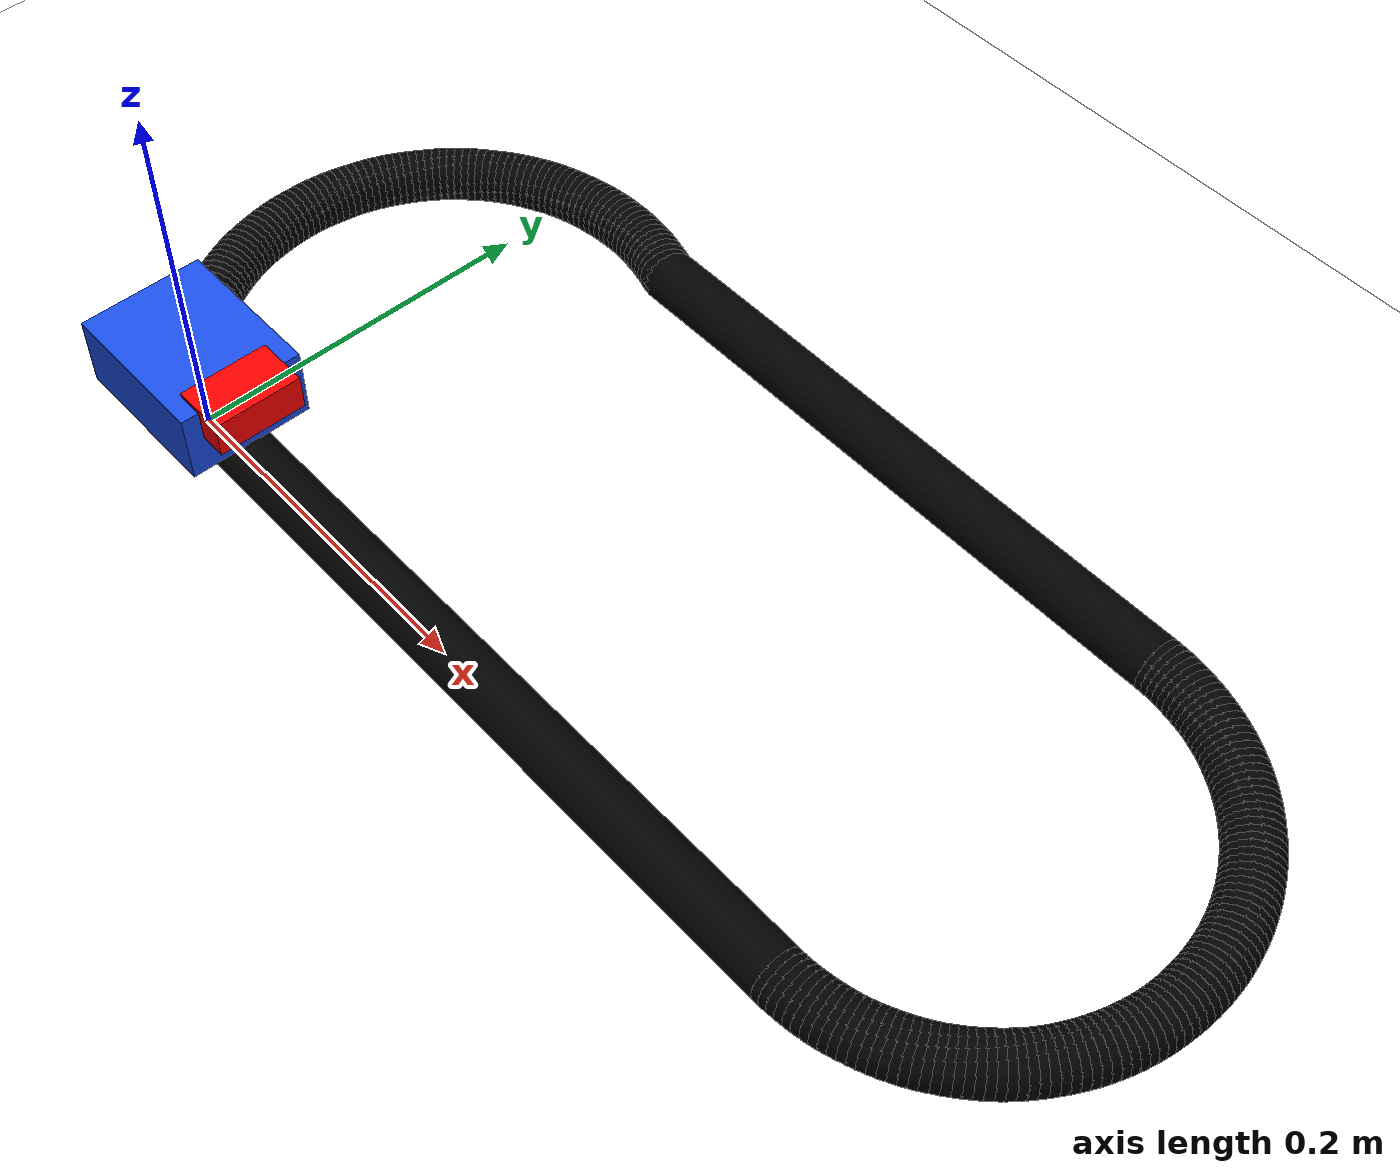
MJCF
<mujoco model="measured_stadium_racetrack">
  <compiler angle="degree"/>
  <option timestep="0.01" gravity="0 0 -9.81"/>
  <visual>
    <global azimuth="90" elevation="-90"/>
    <rgba haze="1 1 1 1"/>
    <headlight ambient="0.8 0.8 0.8" diffuse="0.4 0.4 0.4" specular="0 0 0"/>
  </visual>
  <asset>
    <material name="floor_mat" rgba="1 1 1 1"/>
    <material name="track_mat" rgba="0 0 0 1"/>
    <material name="robot_mat" rgba="0.1 0.3 0.9 1"/>
    <material name="front_mat" rgba="1 0 0 1"/>
  </asset>
  <worldbody>
    <geom name="floor" type="plane" pos="0.232248 0.127161 0" size="1.446080 1.054323 0.02" material="floor_mat"/>
    <geom name="ground_truth_0000" type="capsule" fromto="0.000000 0.000000 0.006 0.431800 0.000000 0.006" size="0.015000" material="track_mat" contype="0" conaffinity="0"/>
    <geom name="ground_truth_0001" type="capsule" fromto="0.431800 0.000000 0.006 0.435840 0.000066 0.006" size="0.015000" material="track_mat" contype="0" conaffinity="0"/>
    <geom name="ground_truth_0002" type="capsule" fromto="0.435840 0.000066 0.006 0.439877 0.000264 0.006" size="0.015000" material="track_mat" contype="0" conaffinity="0"/>
    <geom name="ground_truth_0003" type="capsule" fromto="0.439877 0.000264 0.006 0.443904 0.000595 0.006" size="0.015000" material="track_mat" contype="0" conaffinity="0"/>
    <geom name="ground_truth_0004" type="capsule" fromto="0.443904 0.000595 0.006 0.447918 0.001056 0.006" size="0.015000" material="track_mat" contype="0" conaffinity="0"/>
    <geom name="ground_truth_0005" type="capsule" fromto="0.447918 0.001056 0.006 0.451916 0.001649 0.006" size="0.015000" material="track_mat" contype="0" conaffinity="0"/>
    <geom name="ground_truth_0006" type="capsule" fromto="0.451916 0.001649 0.006 0.455891 0.002373 0.006" size="0.015000" material="track_mat" contype="0" conaffinity="0"/>
    <geom name="ground_truth_0007" type="capsule" fromto="0.455891 0.002373 0.006 0.459841 0.003226 0.006" size="0.015000" material="track_mat" contype="0" conaffinity="0"/>
    <geom name="ground_truth_0008" type="capsule" fromto="0.459841 0.003226 0.006 0.463761 0.004208 0.006" size="0.015000" material="track_mat" contype="0" conaffinity="0"/>
    <geom name="ground_truth_0009" type="capsule" fromto="0.463761 0.004208 0.006 0.467647 0.005317 0.006" size="0.015000" material="track_mat" contype="0" conaffinity="0"/>
    <geom name="ground_truth_0010" type="capsule" fromto="0.467647 0.005317 0.006 0.471494 0.006554 0.006" size="0.015000" material="track_mat" contype="0" conaffinity="0"/>
    <geom name="ground_truth_0011" type="capsule" fromto="0.471494 0.006554 0.006 0.475299 0.007915 0.006" size="0.015000" material="track_mat" contype="0" conaffinity="0"/>
    <geom name="ground_truth_0012" type="capsule" fromto="0.475299 0.007915 0.006 0.479057 0.009400 0.006" size="0.015000" material="track_mat" contype="0" conaffinity="0"/>
    <geom name="ground_truth_0013" type="capsule" fromto="0.479057 0.009400 0.006 0.482764 0.011007 0.006" size="0.015000" material="track_mat" contype="0" conaffinity="0"/>
    <geom name="ground_truth_0014" type="capsule" fromto="0.482764 0.011007 0.006 0.486417 0.012735 0.006" size="0.015000" material="track_mat" contype="0" conaffinity="0"/>
    <geom name="ground_truth_0015" type="capsule" fromto="0.486417 0.012735 0.006 0.490012 0.014581 0.006" size="0.015000" material="track_mat" contype="0" conaffinity="0"/>
    <geom name="ground_truth_0016" type="capsule" fromto="0.490012 0.014581 0.006 0.493544 0.016544 0.006" size="0.015000" material="track_mat" contype="0" conaffinity="0"/>
    <geom name="ground_truth_0017" type="capsule" fromto="0.493544 0.016544 0.006 0.497010 0.018622 0.006" size="0.015000" material="track_mat" contype="0" conaffinity="0"/>
    <geom name="ground_truth_0018" type="capsule" fromto="0.497010 0.018622 0.006 0.500406 0.020812 0.006" size="0.015000" material="track_mat" contype="0" conaffinity="0"/>
    <geom name="ground_truth_0019" type="capsule" fromto="0.500406 0.020812 0.006 0.503729 0.023111 0.006" size="0.015000" material="track_mat" contype="0" conaffinity="0"/>
    <geom name="ground_truth_0020" type="capsule" fromto="0.503729 0.023111 0.006 0.506975 0.025518 0.006" size="0.015000" material="track_mat" contype="0" conaffinity="0"/>
    <geom name="ground_truth_0021" type="capsule" fromto="0.506975 0.025518 0.006 0.510140 0.028031 0.006" size="0.015000" material="track_mat" contype="0" conaffinity="0"/>
    <geom name="ground_truth_0022" type="capsule" fromto="0.510140 0.028031 0.006 0.513222 0.030645 0.006" size="0.015000" material="track_mat" contype="0" conaffinity="0"/>
    <geom name="ground_truth_0023" type="capsule" fromto="0.513222 0.030645 0.006 0.516216 0.033359 0.006" size="0.015000" material="track_mat" contype="0" conaffinity="0"/>
    <geom name="ground_truth_0024" type="capsule" fromto="0.516216 0.033359 0.006 0.519119 0.036169 0.006" size="0.015000" material="track_mat" contype="0" conaffinity="0"/>
    <geom name="ground_truth_0025" type="capsule" fromto="0.519119 0.036169 0.006 0.521930 0.039073 0.006" size="0.015000" material="track_mat" contype="0" conaffinity="0"/>
    <geom name="ground_truth_0026" type="capsule" fromto="0.521930 0.039073 0.006 0.524643 0.042067 0.006" size="0.015000" material="track_mat" contype="0" conaffinity="0"/>
    <geom name="ground_truth_0027" type="capsule" fromto="0.524643 0.042067 0.006 0.527258 0.045148 0.006" size="0.015000" material="track_mat" contype="0" conaffinity="0"/>
    <geom name="ground_truth_0028" type="capsule" fromto="0.527258 0.045148 0.006 0.529770 0.048313 0.006" size="0.015000" material="track_mat" contype="0" conaffinity="0"/>
    <geom name="ground_truth_0029" type="capsule" fromto="0.529770 0.048313 0.006 0.532177 0.051559 0.006" size="0.015000" material="track_mat" contype="0" conaffinity="0"/>
    <geom name="ground_truth_0030" type="capsule" fromto="0.532177 0.051559 0.006 0.534477 0.054882 0.006" size="0.015000" material="track_mat" contype="0" conaffinity="0"/>
    <geom name="ground_truth_0031" type="capsule" fromto="0.534477 0.054882 0.006 0.536667 0.058278 0.006" size="0.015000" material="track_mat" contype="0" conaffinity="0"/>
    <geom name="ground_truth_0032" type="capsule" fromto="0.536667 0.058278 0.006 0.538744 0.061744 0.006" size="0.015000" material="track_mat" contype="0" conaffinity="0"/>
    <geom name="ground_truth_0033" type="capsule" fromto="0.538744 0.061744 0.006 0.540707 0.065276 0.006" size="0.015000" material="track_mat" contype="0" conaffinity="0"/>
    <geom name="ground_truth_0034" type="capsule" fromto="0.540707 0.065276 0.006 0.542553 0.068871 0.006" size="0.015000" material="track_mat" contype="0" conaffinity="0"/>
    <geom name="ground_truth_0035" type="capsule" fromto="0.542553 0.068871 0.006 0.544281 0.072524 0.006" size="0.015000" material="track_mat" contype="0" conaffinity="0"/>
    <geom name="ground_truth_0036" type="capsule" fromto="0.544281 0.072524 0.006 0.545888 0.076231 0.006" size="0.015000" material="track_mat" contype="0" conaffinity="0"/>
    <geom name="ground_truth_0037" type="capsule" fromto="0.545888 0.076231 0.006 0.547373 0.079990 0.006" size="0.015000" material="track_mat" contype="0" conaffinity="0"/>
    <geom name="ground_truth_0038" type="capsule" fromto="0.547373 0.079990 0.006 0.548735 0.083794 0.006" size="0.015000" material="track_mat" contype="0" conaffinity="0"/>
    <geom name="ground_truth_0039" type="capsule" fromto="0.548735 0.083794 0.006 0.549971 0.087642 0.006" size="0.015000" material="track_mat" contype="0" conaffinity="0"/>
    <geom name="ground_truth_0040" type="capsule" fromto="0.549971 0.087642 0.006 0.551081 0.091527 0.006" size="0.015000" material="track_mat" contype="0" conaffinity="0"/>
    <geom name="ground_truth_0041" type="capsule" fromto="0.551081 0.091527 0.006 0.552062 0.095447 0.006" size="0.015000" material="track_mat" contype="0" conaffinity="0"/>
    <geom name="ground_truth_0042" type="capsule" fromto="0.552062 0.095447 0.006 0.552916 0.099397 0.006" size="0.015000" material="track_mat" contype="0" conaffinity="0"/>
    <geom name="ground_truth_0043" type="capsule" fromto="0.552916 0.099397 0.006 0.553639 0.103373 0.006" size="0.015000" material="track_mat" contype="0" conaffinity="0"/>
    <geom name="ground_truth_0044" type="capsule" fromto="0.553639 0.103373 0.006 0.554232 0.107370 0.006" size="0.015000" material="track_mat" contype="0" conaffinity="0"/>
    <geom name="ground_truth_0045" type="capsule" fromto="0.554232 0.107370 0.006 0.554694 0.111384 0.006" size="0.015000" material="track_mat" contype="0" conaffinity="0"/>
    <geom name="ground_truth_0046" type="capsule" fromto="0.554694 0.111384 0.006 0.555024 0.115412 0.006" size="0.015000" material="track_mat" contype="0" conaffinity="0"/>
    <geom name="ground_truth_0047" type="capsule" fromto="0.555024 0.115412 0.006 0.555222 0.119448 0.006" size="0.015000" material="track_mat" contype="0" conaffinity="0"/>
    <geom name="ground_truth_0048" type="capsule" fromto="0.555222 0.119448 0.006 0.555288 0.123488 0.006" size="0.015000" material="track_mat" contype="0" conaffinity="0"/>
    <geom name="ground_truth_0049" type="capsule" fromto="0.555288 0.123488 0.006 0.555222 0.127529 0.006" size="0.015000" material="track_mat" contype="0" conaffinity="0"/>
    <geom name="ground_truth_0050" type="capsule" fromto="0.555222 0.127529 0.006 0.555024 0.131565 0.006" size="0.015000" material="track_mat" contype="0" conaffinity="0"/>
    <geom name="ground_truth_0051" type="capsule" fromto="0.555024 0.131565 0.006 0.554694 0.135592 0.006" size="0.015000" material="track_mat" contype="0" conaffinity="0"/>
    <geom name="ground_truth_0052" type="capsule" fromto="0.554694 0.135592 0.006 0.554232 0.139607 0.006" size="0.015000" material="track_mat" contype="0" conaffinity="0"/>
    <geom name="ground_truth_0053" type="capsule" fromto="0.554232 0.139607 0.006 0.553639 0.143604 0.006" size="0.015000" material="track_mat" contype="0" conaffinity="0"/>
    <geom name="ground_truth_0054" type="capsule" fromto="0.553639 0.143604 0.006 0.552916 0.147580 0.006" size="0.015000" material="track_mat" contype="0" conaffinity="0"/>
    <geom name="ground_truth_0055" type="capsule" fromto="0.552916 0.147580 0.006 0.552062 0.151530 0.006" size="0.015000" material="track_mat" contype="0" conaffinity="0"/>
    <geom name="ground_truth_0056" type="capsule" fromto="0.552062 0.151530 0.006 0.551081 0.155449 0.006" size="0.015000" material="track_mat" contype="0" conaffinity="0"/>
    <geom name="ground_truth_0057" type="capsule" fromto="0.551081 0.155449 0.006 0.549971 0.159335 0.006" size="0.015000" material="track_mat" contype="0" conaffinity="0"/>
    <geom name="ground_truth_0058" type="capsule" fromto="0.549971 0.159335 0.006 0.548735 0.163182 0.006" size="0.015000" material="track_mat" contype="0" conaffinity="0"/>
    <geom name="ground_truth_0059" type="capsule" fromto="0.548735 0.163182 0.006 0.547373 0.166987 0.006" size="0.015000" material="track_mat" contype="0" conaffinity="0"/>
    <geom name="ground_truth_0060" type="capsule" fromto="0.547373 0.166987 0.006 0.545888 0.170745 0.006" size="0.015000" material="track_mat" contype="0" conaffinity="0"/>
    <geom name="ground_truth_0061" type="capsule" fromto="0.545888 0.170745 0.006 0.544281 0.174453 0.006" size="0.015000" material="track_mat" contype="0" conaffinity="0"/>
    <geom name="ground_truth_0062" type="capsule" fromto="0.544281 0.174453 0.006 0.542553 0.178106 0.006" size="0.015000" material="track_mat" contype="0" conaffinity="0"/>
    <geom name="ground_truth_0063" type="capsule" fromto="0.542553 0.178106 0.006 0.540707 0.181700 0.006" size="0.015000" material="track_mat" contype="0" conaffinity="0"/>
    <geom name="ground_truth_0064" type="capsule" fromto="0.540707 0.181700 0.006 0.538744 0.185232 0.006" size="0.015000" material="track_mat" contype="0" conaffinity="0"/>
    <geom name="ground_truth_0065" type="capsule" fromto="0.538744 0.185232 0.006 0.536667 0.188699 0.006" size="0.015000" material="track_mat" contype="0" conaffinity="0"/>
    <geom name="ground_truth_0066" type="capsule" fromto="0.536667 0.188699 0.006 0.534477 0.192095 0.006" size="0.015000" material="track_mat" contype="0" conaffinity="0"/>
    <geom name="ground_truth_0067" type="capsule" fromto="0.534477 0.192095 0.006 0.532177 0.195418 0.006" size="0.015000" material="track_mat" contype="0" conaffinity="0"/>
    <geom name="ground_truth_0068" type="capsule" fromto="0.532177 0.195418 0.006 0.529770 0.198663 0.006" size="0.015000" material="track_mat" contype="0" conaffinity="0"/>
    <geom name="ground_truth_0069" type="capsule" fromto="0.529770 0.198663 0.006 0.527258 0.201828 0.006" size="0.015000" material="track_mat" contype="0" conaffinity="0"/>
    <geom name="ground_truth_0070" type="capsule" fromto="0.527258 0.201828 0.006 0.524643 0.204910 0.006" size="0.015000" material="track_mat" contype="0" conaffinity="0"/>
    <geom name="ground_truth_0071" type="capsule" fromto="0.524643 0.204910 0.006 0.521930 0.207904 0.006" size="0.015000" material="track_mat" contype="0" conaffinity="0"/>
    <geom name="ground_truth_0072" type="capsule" fromto="0.521930 0.207904 0.006 0.519119 0.210808 0.006" size="0.015000" material="track_mat" contype="0" conaffinity="0"/>
    <geom name="ground_truth_0073" type="capsule" fromto="0.519119 0.210808 0.006 0.516216 0.213618 0.006" size="0.015000" material="track_mat" contype="0" conaffinity="0"/>
    <geom name="ground_truth_0074" type="capsule" fromto="0.516216 0.213618 0.006 0.513222 0.216332 0.006" size="0.015000" material="track_mat" contype="0" conaffinity="0"/>
    <geom name="ground_truth_0075" type="capsule" fromto="0.513222 0.216332 0.006 0.510140 0.218946 0.006" size="0.015000" material="track_mat" contype="0" conaffinity="0"/>
    <geom name="ground_truth_0076" type="capsule" fromto="0.510140 0.218946 0.006 0.506975 0.221458 0.006" size="0.015000" material="track_mat" contype="0" conaffinity="0"/>
    <geom name="ground_truth_0077" type="capsule" fromto="0.506975 0.221458 0.006 0.503729 0.223865 0.006" size="0.015000" material="track_mat" contype="0" conaffinity="0"/>
    <geom name="ground_truth_0078" type="capsule" fromto="0.503729 0.223865 0.006 0.500406 0.226165 0.006" size="0.015000" material="track_mat" contype="0" conaffinity="0"/>
    <geom name="ground_truth_0079" type="capsule" fromto="0.500406 0.226165 0.006 0.497010 0.228355 0.006" size="0.015000" material="track_mat" contype="0" conaffinity="0"/>
    <geom name="ground_truth_0080" type="capsule" fromto="0.497010 0.228355 0.006 0.493544 0.230432 0.006" size="0.015000" material="track_mat" contype="0" conaffinity="0"/>
    <geom name="ground_truth_0081" type="capsule" fromto="0.493544 0.230432 0.006 0.490012 0.232395 0.006" size="0.015000" material="track_mat" contype="0" conaffinity="0"/>
    <geom name="ground_truth_0082" type="capsule" fromto="0.490012 0.232395 0.006 0.486417 0.234242 0.006" size="0.015000" material="track_mat" contype="0" conaffinity="0"/>
    <geom name="ground_truth_0083" type="capsule" fromto="0.486417 0.234242 0.006 0.482764 0.235969 0.006" size="0.015000" material="track_mat" contype="0" conaffinity="0"/>
    <geom name="ground_truth_0084" type="capsule" fromto="0.482764 0.235969 0.006 0.479057 0.237577 0.006" size="0.015000" material="track_mat" contype="0" conaffinity="0"/>
    <geom name="ground_truth_0085" type="capsule" fromto="0.479057 0.237577 0.006 0.475299 0.239062 0.006" size="0.015000" material="track_mat" contype="0" conaffinity="0"/>
    <geom name="ground_truth_0086" type="capsule" fromto="0.475299 0.239062 0.006 0.471494 0.240423 0.006" size="0.015000" material="track_mat" contype="0" conaffinity="0"/>
    <geom name="ground_truth_0087" type="capsule" fromto="0.471494 0.240423 0.006 0.467647 0.241659 0.006" size="0.015000" material="track_mat" contype="0" conaffinity="0"/>
    <geom name="ground_truth_0088" type="capsule" fromto="0.467647 0.241659 0.006 0.463761 0.242769 0.006" size="0.015000" material="track_mat" contype="0" conaffinity="0"/>
    <geom name="ground_truth_0089" type="capsule" fromto="0.463761 0.242769 0.006 0.459841 0.243751 0.006" size="0.015000" material="track_mat" contype="0" conaffinity="0"/>
    <geom name="ground_truth_0090" type="capsule" fromto="0.459841 0.243751 0.006 0.455891 0.244604 0.006" size="0.015000" material="track_mat" contype="0" conaffinity="0"/>
    <geom name="ground_truth_0091" type="capsule" fromto="0.455891 0.244604 0.006 0.451916 0.245327 0.006" size="0.015000" material="track_mat" contype="0" conaffinity="0"/>
    <geom name="ground_truth_0092" type="capsule" fromto="0.451916 0.245327 0.006 0.447918 0.245920 0.006" size="0.015000" material="track_mat" contype="0" conaffinity="0"/>
    <geom name="ground_truth_0093" type="capsule" fromto="0.447918 0.245920 0.006 0.443904 0.246382 0.006" size="0.015000" material="track_mat" contype="0" conaffinity="0"/>
    <geom name="ground_truth_0094" type="capsule" fromto="0.443904 0.246382 0.006 0.439877 0.246712 0.006" size="0.015000" material="track_mat" contype="0" conaffinity="0"/>
    <geom name="ground_truth_0095" type="capsule" fromto="0.439877 0.246712 0.006 0.435840 0.246911 0.006" size="0.015000" material="track_mat" contype="0" conaffinity="0"/>
    <geom name="ground_truth_0096" type="capsule" fromto="0.435840 0.246911 0.006 0.431800 0.246977 0.006" size="0.015000" material="track_mat" contype="0" conaffinity="0"/>
    <geom name="ground_truth_0097" type="capsule" fromto="0.431800 0.246977 0.006 0.082550 0.246977 0.006" size="0.015000" material="track_mat" contype="0" conaffinity="0"/>
    <geom name="ground_truth_0098" type="capsule" fromto="0.082550 0.246977 0.006 0.078468 0.248334 0.006" size="0.015000" material="track_mat" contype="0" conaffinity="0"/>
    <geom name="ground_truth_0099" type="capsule" fromto="0.078468 0.248334 0.006 0.074343 0.249556 0.006" size="0.015000" material="track_mat" contype="0" conaffinity="0"/>
    <geom name="ground_truth_0100" type="capsule" fromto="0.074343 0.249556 0.006 0.070180 0.250641 0.006" size="0.015000" material="track_mat" contype="0" conaffinity="0"/>
    <geom name="ground_truth_0101" type="capsule" fromto="0.070180 0.250641 0.006 0.065984 0.251588 0.006" size="0.015000" material="track_mat" contype="0" conaffinity="0"/>
    <geom name="ground_truth_0102" type="capsule" fromto="0.065984 0.251588 0.006 0.061759 0.252396 0.006" size="0.015000" material="track_mat" contype="0" conaffinity="0"/>
    <geom name="ground_truth_0103" type="capsule" fromto="0.061759 0.252396 0.006 0.057509 0.253064 0.006" size="0.015000" material="track_mat" contype="0" conaffinity="0"/>
    <geom name="ground_truth_0104" type="capsule" fromto="0.057509 0.253064 0.006 0.053239 0.253591 0.006" size="0.015000" material="track_mat" contype="0" conaffinity="0"/>
    <geom name="ground_truth_0105" type="capsule" fromto="0.053239 0.253591 0.006 0.048955 0.253977 0.006" size="0.015000" material="track_mat" contype="0" conaffinity="0"/>
    <geom name="ground_truth_0106" type="capsule" fromto="0.048955 0.253977 0.006 0.044660 0.254221 0.006" size="0.015000" material="track_mat" contype="0" conaffinity="0"/>
    <geom name="ground_truth_0107" type="capsule" fromto="0.044660 0.254221 0.006 0.040359 0.254323 0.006" size="0.015000" material="track_mat" contype="0" conaffinity="0"/>
    <geom name="ground_truth_0108" type="capsule" fromto="0.040359 0.254323 0.006 0.036058 0.254282 0.006" size="0.015000" material="track_mat" contype="0" conaffinity="0"/>
    <geom name="ground_truth_0109" type="capsule" fromto="0.036058 0.254282 0.006 0.031760 0.254100 0.006" size="0.015000" material="track_mat" contype="0" conaffinity="0"/>
    <geom name="ground_truth_0110" type="capsule" fromto="0.031760 0.254100 0.006 0.027470 0.253776 0.006" size="0.015000" material="track_mat" contype="0" conaffinity="0"/>
    <geom name="ground_truth_0111" type="capsule" fromto="0.027470 0.253776 0.006 0.023193 0.253311 0.006" size="0.015000" material="track_mat" contype="0" conaffinity="0"/>
    <geom name="ground_truth_0112" type="capsule" fromto="0.023193 0.253311 0.006 0.018934 0.252704 0.006" size="0.015000" material="track_mat" contype="0" conaffinity="0"/>
    <geom name="ground_truth_0113" type="capsule" fromto="0.018934 0.252704 0.006 0.014698 0.251957 0.006" size="0.015000" material="track_mat" contype="0" conaffinity="0"/>
    <geom name="ground_truth_0114" type="capsule" fromto="0.014698 0.251957 0.006 0.010488 0.251071 0.006" size="0.015000" material="track_mat" contype="0" conaffinity="0"/>
    <geom name="ground_truth_0115" type="capsule" fromto="0.010488 0.251071 0.006 0.006310 0.250046 0.006" size="0.015000" material="track_mat" contype="0" conaffinity="0"/>
    <geom name="ground_truth_0116" type="capsule" fromto="0.006310 0.250046 0.006 0.002168 0.248883 0.006" size="0.015000" material="track_mat" contype="0" conaffinity="0"/>
    <geom name="ground_truth_0117" type="capsule" fromto="0.002168 0.248883 0.006 -0.001933 0.247585 0.006" size="0.015000" material="track_mat" contype="0" conaffinity="0"/>
    <geom name="ground_truth_0118" type="capsule" fromto="-0.001933 0.247585 0.006 -0.005989 0.246151 0.006" size="0.015000" material="track_mat" contype="0" conaffinity="0"/>
    <geom name="ground_truth_0119" type="capsule" fromto="-0.005989 0.246151 0.006 -0.009995 0.244585 0.006" size="0.015000" material="track_mat" contype="0" conaffinity="0"/>
    <geom name="ground_truth_0120" type="capsule" fromto="-0.009995 0.244585 0.006 -0.013948 0.242887 0.006" size="0.015000" material="track_mat" contype="0" conaffinity="0"/>
    <geom name="ground_truth_0121" type="capsule" fromto="-0.013948 0.242887 0.006 -0.017842 0.241059 0.006" size="0.015000" material="track_mat" contype="0" conaffinity="0"/>
    <geom name="ground_truth_0122" type="capsule" fromto="-0.017842 0.241059 0.006 -0.021674 0.239103 0.006" size="0.015000" material="track_mat" contype="0" conaffinity="0"/>
    <geom name="ground_truth_0123" type="capsule" fromto="-0.021674 0.239103 0.006 -0.025439 0.237023 0.006" size="0.015000" material="track_mat" contype="0" conaffinity="0"/>
    <geom name="ground_truth_0124" type="capsule" fromto="-0.025439 0.237023 0.006 -0.029134 0.234819 0.006" size="0.015000" material="track_mat" contype="0" conaffinity="0"/>
    <geom name="ground_truth_0125" type="capsule" fromto="-0.029134 0.234819 0.006 -0.032753 0.232494 0.006" size="0.015000" material="track_mat" contype="0" conaffinity="0"/>
    <geom name="ground_truth_0126" type="capsule" fromto="-0.032753 0.232494 0.006 -0.036294 0.230050 0.006" size="0.015000" material="track_mat" contype="0" conaffinity="0"/>
    <geom name="ground_truth_0127" type="capsule" fromto="-0.036294 0.230050 0.006 -0.039752 0.227492 0.006" size="0.015000" material="track_mat" contype="0" conaffinity="0"/>
    <geom name="ground_truth_0128" type="capsule" fromto="-0.039752 0.227492 0.006 -0.043124 0.224820 0.006" size="0.015000" material="track_mat" contype="0" conaffinity="0"/>
    <geom name="ground_truth_0129" type="capsule" fromto="-0.043124 0.224820 0.006 -0.046405 0.222038 0.006" size="0.015000" material="track_mat" contype="0" conaffinity="0"/>
    <geom name="ground_truth_0130" type="capsule" fromto="-0.046405 0.222038 0.006 -0.049593 0.219150 0.006" size="0.015000" material="track_mat" contype="0" conaffinity="0"/>
    <geom name="ground_truth_0131" type="capsule" fromto="-0.049593 0.219150 0.006 -0.052684 0.216158 0.006" size="0.015000" material="track_mat" contype="0" conaffinity="0"/>
    <geom name="ground_truth_0132" type="capsule" fromto="-0.052684 0.216158 0.006 -0.055674 0.213065 0.006" size="0.015000" material="track_mat" contype="0" conaffinity="0"/>
    <geom name="ground_truth_0133" type="capsule" fromto="-0.055674 0.213065 0.006 -0.058561 0.209875 0.006" size="0.015000" material="track_mat" contype="0" conaffinity="0"/>
    <geom name="ground_truth_0134" type="capsule" fromto="-0.058561 0.209875 0.006 -0.061340 0.206592 0.006" size="0.015000" material="track_mat" contype="0" conaffinity="0"/>
    <geom name="ground_truth_0135" type="capsule" fromto="-0.061340 0.206592 0.006 -0.064010 0.203219 0.006" size="0.015000" material="track_mat" contype="0" conaffinity="0"/>
    <geom name="ground_truth_0136" type="capsule" fromto="-0.064010 0.203219 0.006 -0.066567 0.199759 0.006" size="0.015000" material="track_mat" contype="0" conaffinity="0"/>
    <geom name="ground_truth_0137" type="capsule" fromto="-0.066567 0.199759 0.006 -0.069008 0.196217 0.006" size="0.015000" material="track_mat" contype="0" conaffinity="0"/>
    <geom name="ground_truth_0138" type="capsule" fromto="-0.069008 0.196217 0.006 -0.071331 0.192596 0.006" size="0.015000" material="track_mat" contype="0" conaffinity="0"/>
    <geom name="ground_truth_0139" type="capsule" fromto="-0.071331 0.192596 0.006 -0.073532 0.188900 0.006" size="0.015000" material="track_mat" contype="0" conaffinity="0"/>
    <geom name="ground_truth_0140" type="capsule" fromto="-0.073532 0.188900 0.006 -0.075611 0.185134 0.006" size="0.015000" material="track_mat" contype="0" conaffinity="0"/>
    <geom name="ground_truth_0141" type="capsule" fromto="-0.075611 0.185134 0.006 -0.077564 0.181301 0.006" size="0.015000" material="track_mat" contype="0" conaffinity="0"/>
    <geom name="ground_truth_0142" type="capsule" fromto="-0.077564 0.181301 0.006 -0.079389 0.177405 0.006" size="0.015000" material="track_mat" contype="0" conaffinity="0"/>
    <geom name="ground_truth_0143" type="capsule" fromto="-0.079389 0.177405 0.006 -0.081085 0.173452 0.006" size="0.015000" material="track_mat" contype="0" conaffinity="0"/>
    <geom name="ground_truth_0144" type="capsule" fromto="-0.081085 0.173452 0.006 -0.082649 0.169444 0.006" size="0.015000" material="track_mat" contype="0" conaffinity="0"/>
    <geom name="ground_truth_0145" type="capsule" fromto="-0.082649 0.169444 0.006 -0.084080 0.165387 0.006" size="0.015000" material="track_mat" contype="0" conaffinity="0"/>
    <geom name="ground_truth_0146" type="capsule" fromto="-0.084080 0.165387 0.006 -0.085376 0.161285 0.006" size="0.015000" material="track_mat" contype="0" conaffinity="0"/>
    <geom name="ground_truth_0147" type="capsule" fromto="-0.085376 0.161285 0.006 -0.086536 0.157143 0.006" size="0.015000" material="track_mat" contype="0" conaffinity="0"/>
    <geom name="ground_truth_0148" type="capsule" fromto="-0.086536 0.157143 0.006 -0.087558 0.152964 0.006" size="0.015000" material="track_mat" contype="0" conaffinity="0"/>
    <geom name="ground_truth_0149" type="capsule" fromto="-0.087558 0.152964 0.006 -0.088442 0.148754 0.006" size="0.015000" material="track_mat" contype="0" conaffinity="0"/>
    <geom name="ground_truth_0150" type="capsule" fromto="-0.088442 0.148754 0.006 -0.089187 0.144517 0.006" size="0.015000" material="track_mat" contype="0" conaffinity="0"/>
    <geom name="ground_truth_0151" type="capsule" fromto="-0.089187 0.144517 0.006 -0.089791 0.140258 0.006" size="0.015000" material="track_mat" contype="0" conaffinity="0"/>
    <geom name="ground_truth_0152" type="capsule" fromto="-0.089791 0.140258 0.006 -0.090254 0.135981 0.006" size="0.015000" material="track_mat" contype="0" conaffinity="0"/>
    <geom name="ground_truth_0153" type="capsule" fromto="-0.090254 0.135981 0.006 -0.090575 0.131691 0.006" size="0.015000" material="track_mat" contype="0" conaffinity="0"/>
    <geom name="ground_truth_0154" type="capsule" fromto="-0.090575 0.131691 0.006 -0.090755 0.127393 0.006" size="0.015000" material="track_mat" contype="0" conaffinity="0"/>
    <geom name="ground_truth_0155" type="capsule" fromto="-0.090755 0.127393 0.006 -0.090792 0.123091 0.006" size="0.015000" material="track_mat" contype="0" conaffinity="0"/>
    <geom name="ground_truth_0156" type="capsule" fromto="-0.090792 0.123091 0.006 -0.090687 0.118790 0.006" size="0.015000" material="track_mat" contype="0" conaffinity="0"/>
    <geom name="ground_truth_0157" type="capsule" fromto="-0.090687 0.118790 0.006 -0.090441 0.114496 0.006" size="0.015000" material="track_mat" contype="0" conaffinity="0"/>
    <geom name="ground_truth_0158" type="capsule" fromto="-0.090441 0.114496 0.006 -0.090052 0.110211 0.006" size="0.015000" material="track_mat" contype="0" conaffinity="0"/>
    <geom name="ground_truth_0159" type="capsule" fromto="-0.090052 0.110211 0.006 -0.089523 0.105942 0.006" size="0.015000" material="track_mat" contype="0" conaffinity="0"/>
    <geom name="ground_truth_0160" type="capsule" fromto="-0.089523 0.105942 0.006 -0.088852 0.101693 0.006" size="0.015000" material="track_mat" contype="0" conaffinity="0"/>
    <geom name="ground_truth_0161" type="capsule" fromto="-0.088852 0.101693 0.006 -0.088042 0.097468 0.006" size="0.015000" material="track_mat" contype="0" conaffinity="0"/>
    <geom name="ground_truth_0162" type="capsule" fromto="-0.088042 0.097468 0.006 -0.087092 0.093272 0.006" size="0.015000" material="track_mat" contype="0" conaffinity="0"/>
    <geom name="ground_truth_0163" type="capsule" fromto="-0.087092 0.093272 0.006 -0.086005 0.089110 0.006" size="0.015000" material="track_mat" contype="0" conaffinity="0"/>
    <geom name="ground_truth_0164" type="capsule" fromto="-0.086005 0.089110 0.006 -0.084780 0.084986 0.006" size="0.015000" material="track_mat" contype="0" conaffinity="0"/>
    <geom name="ground_truth_0165" type="capsule" fromto="-0.084780 0.084986 0.006 -0.083420 0.080905 0.006" size="0.015000" material="track_mat" contype="0" conaffinity="0"/>
    <geom name="ground_truth_0166" type="capsule" fromto="-0.083420 0.080905 0.006 -0.081926 0.076871 0.006" size="0.015000" material="track_mat" contype="0" conaffinity="0"/>
    <geom name="ground_truth_0167" type="capsule" fromto="-0.081926 0.076871 0.006 -0.080300 0.072888 0.006" size="0.015000" material="track_mat" contype="0" conaffinity="0"/>
    <geom name="ground_truth_0168" type="capsule" fromto="-0.080300 0.072888 0.006 -0.078543 0.068962 0.006" size="0.015000" material="track_mat" contype="0" conaffinity="0"/>
    <geom name="ground_truth_0169" type="capsule" fromto="-0.078543 0.068962 0.006 -0.076657 0.065095 0.006" size="0.015000" material="track_mat" contype="0" conaffinity="0"/>
    <geom name="ground_truth_0170" type="capsule" fromto="-0.076657 0.065095 0.006 -0.074644 0.061293 0.006" size="0.015000" material="track_mat" contype="0" conaffinity="0"/>
    <geom name="ground_truth_0171" type="capsule" fromto="-0.074644 0.061293 0.006 -0.072507 0.057560 0.006" size="0.015000" material="track_mat" contype="0" conaffinity="0"/>
    <geom name="ground_truth_0172" type="capsule" fromto="-0.072507 0.057560 0.006 -0.070248 0.053899 0.006" size="0.015000" material="track_mat" contype="0" conaffinity="0"/>
    <geom name="ground_truth_0173" type="capsule" fromto="-0.070248 0.053899 0.006 -0.067869 0.050314 0.006" size="0.015000" material="track_mat" contype="0" conaffinity="0"/>
    <geom name="ground_truth_0174" type="capsule" fromto="-0.067869 0.050314 0.006 -0.065373 0.046811 0.006" size="0.015000" material="track_mat" contype="0" conaffinity="0"/>
    <geom name="ground_truth_0175" type="capsule" fromto="-0.065373 0.046811 0.006 -0.062762 0.043391 0.006" size="0.015000" material="track_mat" contype="0" conaffinity="0"/>
    <geom name="ground_truth_0176" type="capsule" fromto="-0.062762 0.043391 0.006 -0.060040 0.040060 0.006" size="0.015000" material="track_mat" contype="0" conaffinity="0"/>
    <geom name="ground_truth_0177" type="capsule" fromto="-0.060040 0.040060 0.006 -0.057210 0.036821 0.006" size="0.015000" material="track_mat" contype="0" conaffinity="0"/>
    <geom name="ground_truth_0178" type="capsule" fromto="-0.057210 0.036821 0.006 -0.054274 0.033676 0.006" size="0.015000" material="track_mat" contype="0" conaffinity="0"/>
    <geom name="ground_truth_0179" type="capsule" fromto="-0.054274 0.033676 0.006 -0.051236 0.030631 0.006" size="0.015000" material="track_mat" contype="0" conaffinity="0"/>
    <geom name="ground_truth_0180" type="capsule" fromto="-0.051236 0.030631 0.006 -0.048099 0.027687 0.006" size="0.015000" material="track_mat" contype="0" conaffinity="0"/>
    <geom name="ground_truth_0181" type="capsule" fromto="-0.048099 0.027687 0.006 -0.044866 0.024849 0.006" size="0.015000" material="track_mat" contype="0" conaffinity="0"/>
    <geom name="ground_truth_0182" type="capsule" fromto="-0.044866 0.024849 0.006 -0.041541 0.022119 0.006" size="0.015000" material="track_mat" contype="0" conaffinity="0"/>
    <geom name="ground_truth_0183" type="capsule" fromto="-0.041541 0.022119 0.006 -0.038128 0.019500 0.006" size="0.015000" material="track_mat" contype="0" conaffinity="0"/>
    <geom name="ground_truth_0184" type="capsule" fromto="-0.038128 0.019500 0.006 -0.034631 0.016996 0.006" size="0.015000" material="track_mat" contype="0" conaffinity="0"/>
    <geom name="ground_truth_0185" type="capsule" fromto="-0.034631 0.016996 0.006 -0.031052 0.014608 0.006" size="0.015000" material="track_mat" contype="0" conaffinity="0"/>
    <geom name="ground_truth_0186" type="capsule" fromto="-0.031052 0.014608 0.006 -0.027397 0.012340 0.006" size="0.015000" material="track_mat" contype="0" conaffinity="0"/>
    <geom name="ground_truth_0187" type="capsule" fromto="-0.027397 0.012340 0.006 -0.023668 0.010194 0.006" size="0.015000" material="track_mat" contype="0" conaffinity="0"/>
    <geom name="ground_truth_0188" type="capsule" fromto="-0.023668 0.010194 0.006 -0.019871 0.008172 0.006" size="0.015000" material="track_mat" contype="0" conaffinity="0"/>
    <geom name="ground_truth_0189" type="capsule" fromto="-0.019871 0.008172 0.006 -0.016009 0.006277 0.006" size="0.015000" material="track_mat" contype="0" conaffinity="0"/>
    <geom name="ground_truth_0190" type="capsule" fromto="-0.016009 0.006277 0.006 -0.012087 0.004510 0.006" size="0.015000" material="track_mat" contype="0" conaffinity="0"/>
    <geom name="ground_truth_0191" type="capsule" fromto="-0.012087 0.004510 0.006 -0.008108 0.002874 0.006" size="0.015000" material="track_mat" contype="0" conaffinity="0"/>
    <geom name="ground_truth_0192" type="capsule" fromto="-0.008108 0.002874 0.006 -0.004078 0.001370 0.006" size="0.015000" material="track_mat" contype="0" conaffinity="0"/>
    <geom name="ground_truth_0193" type="capsule" fromto="-0.004078 0.001370 0.006 0.000000 0.000000 0.006" size="0.015000" material="track_mat" contype="0" conaffinity="0"/>
    <body name="pololu" pos="0.000000 0.000000 0.040000" quat="1.000000 0 0 0.000000">
      <freejoint name="pololu_free"/>
      <geom name="robot_body" type="box" size="0.045 0.035 0.02" material="robot_mat"/>
      <geom name="robot_front" type="box" pos="0.045 0 0.012" size="0.015 0.025 0.01" material="front_mat"/>
    </body>
  </worldbody>
</mujoco>
